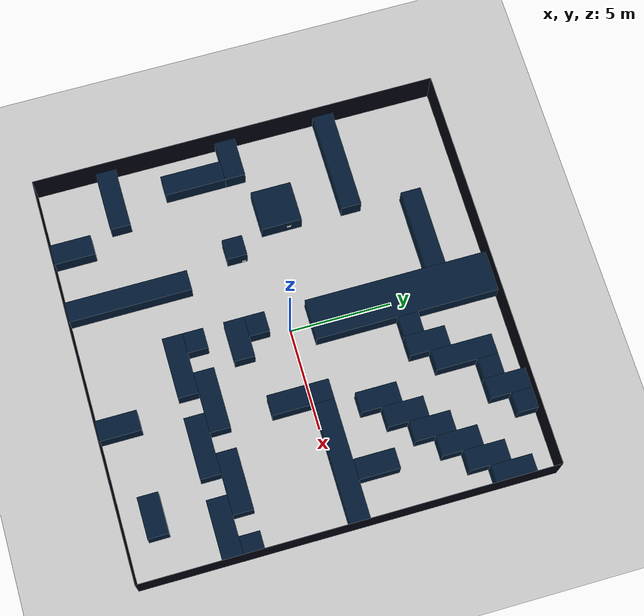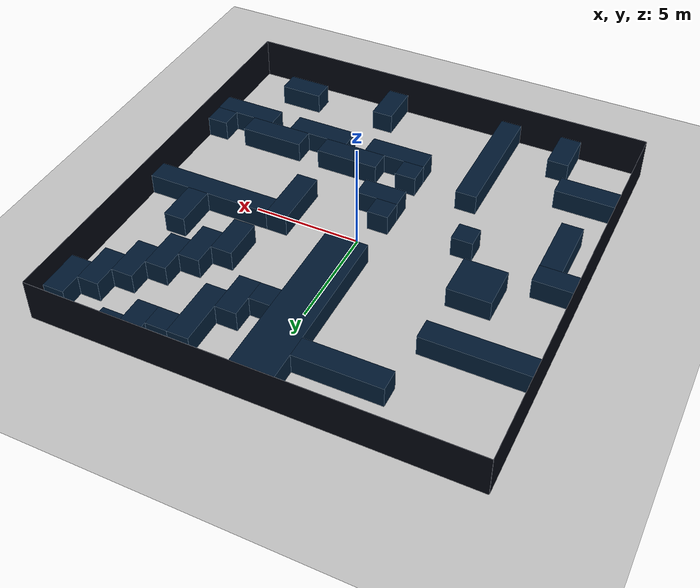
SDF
<sdf version='1.10'>
  <world name='maze'>
    <physics name='1ms' type='ignored'>
      <max_step_size>0.0030000000000000001</max_step_size>
      <real_time_factor>1</real_time_factor>
      <real_time_update_rate>1000</real_time_update_rate>
    </physics>
    <plugin name='gz::sim::systems::Physics' filename='gz-sim-physics-system'/>
    <plugin name='gz::sim::systems::UserCommands' filename='gz-sim-user-commands-system'/>
    <plugin name='gz::sim::systems::SceneBroadcaster' filename='gz-sim-scene-broadcaster-system'/>
    <plugin name='gz::sim::systems::Contact' filename='gz-sim-contact-system'/>
    <gravity>0 0 -9.8000000000000007</gravity>
    <magnetic_field>6.0000000000000002e-06 2.3e-05 -4.1999999999999998e-05</magnetic_field>
    <atmosphere type='adiabatic'/>
    <scene>
      <ambient>0.400000006 0.400000006 0.400000006 1</ambient>
      <background>0.699999988 0.699999988 0.699999988 1</background>
      <shadows>true</shadows>
    </scene>
    <model name='ground_plane'>
      <static>true</static>
      <link name='link'>
        <collision name='collision'>
          <geometry>
            <plane>
              <normal>0 0 1</normal>
              <size>100 100</size>
            </plane>
          </geometry>
          <surface>
            <friction>
              <ode/>
            </friction>
            <bounce/>
            <contact/>
          </surface>
        </collision>
        <visual name='visual'>
          <geometry>
            <plane>
              <normal>0 0 1</normal>
              <size>100 100</size>
            </plane>
          </geometry>
          <material>
            <ambient>0.800000012 0.800000012 0.800000012 1</ambient>
            <diffuse>0.800000012 0.800000012 0.800000012 1</diffuse>
            <specular>0.800000012 0.800000012 0.800000012 1</specular>
          </material>
          <plugin name='__default__' filename='__default__'/>
        </visual>
        <pose>0 0 0 0 0 0</pose>
        <inertial>
          <pose>0 0 0 0 0 0</pose>
          <mass>1</mass>
          <inertia>
            <ixx>1</ixx>
            <ixy>0</ixy>
            <ixz>0</ixz>
            <iyy>1</iyy>
            <iyz>0</iyz>
            <izz>1</izz>
          </inertia>
        </inertial>
        <enable_wind>false</enable_wind>
      </link>
      <plugin name='__default__' filename='__default__'/>
      <pose>0 0 0 0 0 0</pose>
      <self_collide>false</self_collide>
    </model>
    <model name='border'>
      <pose>0 0 1 0 0 0</pose>
      <static>true</static>
      <link name='wall1'>
        <pose>-10.005000000000001 0 0 0 0 0</pose>
        <collision name='wall1_collision'>
          <geometry>
            <box>
              <size>0.01 20 2</size>
            </box>
          </geometry>
          <surface>
            <friction>
              <ode/>
            </friction>
            <bounce/>
            <contact/>
          </surface>
        </collision>
        <visual name='wall1_visual'>
          <geometry>
            <box>
              <size>0.01 20 2</size>
            </box>
          </geometry>
          <material>
            <ambient>0.100000001 0.100000001 0.100000001 1</ambient>
            <diffuse>0 0.00999999978 0.0500000007 1</diffuse>
            <specular>0 0.00999999978 0.0500000007 1</specular>
          </material>
        </visual>
        <inertial>
          <pose>0 0 0 0 0 0</pose>
          <mass>1</mass>
          <inertia>
            <ixx>1</ixx>
            <ixy>0</ixy>
            <ixz>0</ixz>
            <iyy>1</iyy>
            <iyz>0</iyz>
            <izz>1</izz>
          </inertia>
        </inertial>
        <enable_wind>false</enable_wind>
        <static>true</static>
      </link>
      <link name='wall2'>
        <pose>10.005000000000001 0 0 0 0 0</pose>
        <collision name='wall2_collision'>
          <geometry>
            <box>
              <size>0.01 20 2</size>
            </box>
          </geometry>
          <surface>
            <friction>
              <ode/>
            </friction>
            <bounce/>
            <contact/>
          </surface>
        </collision>
        <visual name='wall2_visual'>
          <geometry>
            <box>
              <size>0.01 20 2</size>
            </box>
          </geometry>
          <material>
            <ambient>0.100000001 0.100000001 0.100000001 1</ambient>
            <diffuse>0 0.00999999978 0.0500000007 1</diffuse>
            <specular>0 0.00999999978 0.0500000007 1</specular>
          </material>
        </visual>
        <inertial>
          <pose>0 0 0 0 0 0</pose>
          <mass>1</mass>
          <inertia>
            <ixx>1</ixx>
            <ixy>0</ixy>
            <ixz>0</ixz>
            <iyy>1</iyy>
            <iyz>0</iyz>
            <izz>1</izz>
          </inertia>
        </inertial>
        <enable_wind>false</enable_wind>
        <static>true</static>
      </link>
      <link name='wall3'>
        <pose>0 10.005000000000001 0 0 0 0</pose>
        <collision name='wall3_collision'>
          <geometry>
            <box>
              <size>20 0.01 2</size>
            </box>
          </geometry>
          <surface>
            <friction>
              <ode/>
            </friction>
            <bounce/>
            <contact/>
          </surface>
        </collision>
        <visual name='wall3_visual'>
          <geometry>
            <box>
              <size>20 0.01 2</size>
            </box>
          </geometry>
          <material>
            <ambient>0.100000001 0.100000001 0.100000001 1</ambient>
            <diffuse>0 0.00999999978 0.0500000007 1</diffuse>
            <specular>0 0.00999999978 0.0500000007 1</specular>
          </material>
        </visual>
        <inertial>
          <pose>0 0 0 0 0 0</pose>
          <mass>1</mass>
          <inertia>
            <ixx>1</ixx>
            <ixy>0</ixy>
            <ixz>0</ixz>
            <iyy>1</iyy>
            <iyz>0</iyz>
            <izz>1</izz>
          </inertia>
        </inertial>
        <enable_wind>false</enable_wind>
        <static>true</static>
      </link>
      <link name='wall4'>
        <pose>0 -10.005000000000001 0 0 0 0</pose>
        <collision name='wall4_collision'>
          <geometry>
            <box>
              <size>20 0.01 2</size>
            </box>
          </geometry>
          <surface>
            <friction>
              <ode/>
            </friction>
            <bounce/>
            <contact/>
          </surface>
          <material>
            <ambient>0.1 0.1 0.1 1</ambient>
            <diffuse>0 0.01 0.05 1</diffuse>
            <specular>0 0.01 0.05 1</specular>
          </material>
        </collision>
        <visual name='wall4_visual'>
          <geometry>
            <box>
              <size>20 0.01 2</size>
            </box>
          </geometry>
          <material>
            <ambient>0.100000001 0.100000001 0.100000001 1</ambient>
            <diffuse>0 0.00999999978 0.0500000007 1</diffuse>
            <specular>0 0.00999999978 0.0500000007 1</specular>
          </material>
        </visual>
        <inertial>
          <pose>0 0 0 0 0 0</pose>
          <mass>1</mass>
          <inertia>
            <ixx>1</ixx>
            <ixy>0</ixy>
            <ixz>0</ixz>
            <iyy>1</iyy>
            <iyz>0</iyz>
            <izz>1</izz>
          </inertia>
        </inertial>
        <enable_wind>false</enable_wind>
        <static>true</static>
      </link>
      <self_collide>false</self_collide>
    </model>
    <model name='obstacles'>
      <pose>0 0 0.5 0 0 0</pose>
      <static>true</static>
      <link name='wall1'>
        <pose>-6.5 -9 0 0 0 0</pose>
        <collision name='wall1_collision'>
          <geometry>
            <box>
              <size>1 2 1</size>
            </box>
          </geometry>
          <surface>
            <friction>
              <ode/>
            </friction>
            <bounce/>
            <contact/>
          </surface>
        </collision>
        <visual name='wall1_visual'>
          <geometry>
            <box>
              <size>1 2 1</size>
            </box>
          </geometry>
          <material>
            <ambient>0.100000001 0.100000001 0.100000001 1</ambient>
            <diffuse>0 0.100000001 0.200000003 1</diffuse>
            <specular>0 0.00999999978 0.0500000007 1</specular>
          </material>
        </visual>
        <inertial>
          <pose>0 0 0 0 0 0</pose>
          <mass>1</mass>
          <inertia>
            <ixx>1</ixx>
            <ixy>0</ixy>
            <ixz>0</ixz>
            <iyy>1</iyy>
            <iyz>0</iyz>
            <izz>1</izz>
          </inertia>
        </inertial>
        <enable_wind>false</enable_wind>
        <static>true</static>
      </link>
      <link name='wall2'>
        <pose>-8.5 -6.5 0 0 0 0</pose>
        <collision name='wall2_collision'>
          <geometry>
            <box>
              <size>3 1 1</size>
            </box>
          </geometry>
          <surface>
            <friction>
              <ode/>
            </friction>
            <bounce/>
            <contact/>
          </surface>
        </collision>
        <visual name='wall2_visual'>
          <geometry>
            <box>
              <size>3 1 1</size>
            </box>
          </geometry>
          <material>
            <ambient>0.100000001 0.100000001 0.100000001 1</ambient>
            <diffuse>0 0.100000001 0.200000003 1</diffuse>
            <specular>0 0.00999999978 0.0500000007 1</specular>
          </material>
        </visual>
        <inertial>
          <pose>0 0 0 0 0 0</pose>
          <mass>1</mass>
          <inertia>
            <ixx>1</ixx>
            <ixy>0</ixy>
            <ixz>0</ixz>
            <iyy>1</iyy>
            <iyz>0</iyz>
            <izz>1</izz>
          </inertia>
        </inertial>
        <enable_wind>false</enable_wind>
        <static>true</static>
      </link>
      <link name='wall3'>
        <pose>-3.5 -7 0 0 0 0</pose>
        <collision name='wall3_collision'>
          <geometry>
            <box>
              <size>1 6 1</size>
            </box>
          </geometry>
          <surface>
            <friction>
              <ode/>
            </friction>
            <bounce/>
            <contact/>
          </surface>
        </collision>
        <visual name='wall3_visual'>
          <geometry>
            <box>
              <size>1 6 1</size>
            </box>
          </geometry>
          <material>
            <ambient>0.100000001 0.100000001 0.100000001 1</ambient>
            <diffuse>0 0.100000001 0.200000003 1</diffuse>
            <specular>0 0.00999999978 0.0500000007 1</specular>
          </material>
        </visual>
        <inertial>
          <pose>0 0 0 0 0 0</pose>
          <mass>1</mass>
          <inertia>
            <ixx>1</ixx>
            <ixy>0</ixy>
            <ixz>0</ixz>
            <iyy>1</iyy>
            <iyz>0</iyz>
            <izz>1</izz>
          </inertia>
        </inertial>
        <enable_wind>false</enable_wind>
        <static>true</static>
      </link>
      <link name='wall4'>
        <pose>2.5 -9 0 0 0 0</pose>
        <collision name='wall4_collision'>
          <geometry>
            <box>
              <size>1 2 1</size>
            </box>
          </geometry>
          <surface>
            <friction>
              <ode/>
            </friction>
            <bounce/>
            <contact/>
          </surface>
        </collision>
        <visual name='wall4_visual'>
          <geometry>
            <box>
              <size>1 2 1</size>
            </box>
          </geometry>
          <material>
            <ambient>0.100000001 0.100000001 0.100000001 1</ambient>
            <diffuse>0 0.100000001 0.200000003 1</diffuse>
            <specular>0 0.00999999978 0.0500000007 1</specular>
          </material>
        </visual>
        <inertial>
          <pose>0 0 0 0 0 0</pose>
          <mass>1</mass>
          <inertia>
            <ixx>1</ixx>
            <ixy>0</ixy>
            <ixz>0</ixz>
            <iyy>1</iyy>
            <iyz>0</iyz>
            <izz>1</izz>
          </inertia>
        </inertial>
        <enable_wind>false</enable_wind>
        <static>true</static>
      </link>
      <link name='wall5'>
        <pose>7 -8.5 0 0 0 0</pose>
        <collision name='wall5_collision'>
          <geometry>
            <box>
              <size>2 1 1</size>
            </box>
          </geometry>
          <surface>
            <friction>
              <ode/>
            </friction>
            <bounce/>
            <contact/>
          </surface>
        </collision>
        <visual name='wall5_visual'>
          <geometry>
            <box>
              <size>2 1 1</size>
            </box>
          </geometry>
          <material>
            <ambient>0.100000001 0.100000001 0.100000001 1</ambient>
            <diffuse>0 0.100000001 0.200000003 1</diffuse>
            <specular>0 0.00999999978 0.0500000007 1</specular>
          </material>
        </visual>
        <inertial>
          <pose>0 0 0 0 0 0</pose>
          <mass>1</mass>
          <inertia>
            <ixx>1</ixx>
            <ixy>0</ixy>
            <ixz>0</ixz>
            <iyy>1</iyy>
            <iyz>0</iyz>
            <izz>1</izz>
          </inertia>
        </inertial>
        <enable_wind>false</enable_wind>
        <static>true</static>
      </link>
      <link name='wall6'>
        <pose>-9 -0.5 0 0 0 0</pose>
        <collision name='wall6_collision'>
          <geometry>
            <box>
              <size>2 1 1</size>
            </box>
          </geometry>
          <surface>
            <friction>
              <ode/>
            </friction>
            <bounce/>
            <contact/>
          </surface>
        </collision>
        <visual name='wall6_visual'>
          <geometry>
            <box>
              <size>2 1 1</size>
            </box>
          </geometry>
          <material>
            <ambient>0.100000001 0.100000001 0.100000001 1</ambient>
            <diffuse>0 0.100000001 0.200000003 1</diffuse>
            <specular>0 0.00999999978 0.0500000007 1</specular>
          </material>
        </visual>
        <inertial>
          <pose>0 0 0 0 0 0</pose>
          <mass>1</mass>
          <inertia>
            <ixx>1</ixx>
            <ixy>0</ixy>
            <ixz>0</ixz>
            <iyy>1</iyy>
            <iyz>0</iyz>
            <izz>1</izz>
          </inertia>
        </inertial>
        <enable_wind>false</enable_wind>
        <static>true</static>
      </link>
      <link name='wall7'>
        <pose>-8.5 -2.5 0 0 0 0</pose>
        <collision name='wall7_collision'>
          <geometry>
            <box>
              <size>1 3 1</size>
            </box>
          </geometry>
          <surface>
            <friction>
              <ode/>
            </friction>
            <bounce/>
            <contact/>
          </surface>
        </collision>
        <visual name='wall7_visual'>
          <geometry>
            <box>
              <size>1 3 1</size>
            </box>
          </geometry>
          <material>
            <ambient>0.100000001 0.100000001 0.100000001 1</ambient>
            <diffuse>0 0.100000001 0.200000003 1</diffuse>
            <specular>0 0.00999999978 0.0500000007 1</specular>
          </material>
        </visual>
        <inertial>
          <pose>0 0 0 0 0 0</pose>
          <mass>1</mass>
          <inertia>
            <ixx>1</ixx>
            <ixy>0</ixy>
            <ixz>0</ixz>
            <iyy>1</iyy>
            <iyz>0</iyz>
            <izz>1</izz>
          </inertia>
        </inertial>
        <enable_wind>false</enable_wind>
        <static>true</static>
      </link>
      <link name='wall8'>
        <pose>-4.5 -1.5 0 0 0 0</pose>
        <collision name='wall8_collision'>
          <geometry>
            <box>
              <size>1 1 1</size>
            </box>
          </geometry>
          <surface>
            <friction>
              <ode/>
            </friction>
            <bounce/>
            <contact/>
          </surface>
        </collision>
        <visual name='wall8_visual'>
          <geometry>
            <box>
              <size>1 1 1</size>
            </box>
          </geometry>
          <material>
            <ambient>0.100000001 0.100000001 0.100000001 1</ambient>
            <diffuse>0 0.100000001 0.200000003 1</diffuse>
            <specular>0 0.00999999978 0.0500000007 1</specular>
          </material>
        </visual>
        <inertial>
          <pose>0 0 0 0 0 0</pose>
          <mass>1</mass>
          <inertia>
            <ixx>1</ixx>
            <ixy>0</ixy>
            <ixz>0</ixz>
            <iyy>1</iyy>
            <iyz>0</iyz>
            <izz>1</izz>
          </inertia>
        </inertial>
        <enable_wind>false</enable_wind>
        <static>true</static>
      </link>
      <link name='wall9'>
        <pose>-6 1 0 0 0 0</pose>
        <collision name='wall9_collision'>
          <geometry>
            <box>
              <size>2 2 1</size>
            </box>
          </geometry>
          <surface>
            <friction>
              <ode/>
            </friction>
            <bounce/>
            <contact/>
          </surface>
        </collision>
        <visual name='wall9_visual'>
          <geometry>
            <box>
              <size>2 2 1</size>
            </box>
          </geometry>
          <material>
            <ambient>0.100000001 0.100000001 0.100000001 1</ambient>
            <diffuse>0 0.100000001 0.200000003 1</diffuse>
            <specular>0 0.00999999978 0.0500000007 1</specular>
          </material>
        </visual>
        <inertial>
          <pose>0 0 0 0 0 0</pose>
          <mass>1</mass>
          <inertia>
            <ixx>1</ixx>
            <ixy>0</ixy>
            <ixz>0</ixz>
            <iyy>1</iyy>
            <iyz>0</iyz>
            <izz>1</izz>
          </inertia>
        </inertial>
        <enable_wind>false</enable_wind>
        <static>true</static>
      </link>
      <link name='wall10'>
        <pose>-7.5 4.5 0 0 0 0</pose>
        <collision name='wall10_collision'>
          <geometry>
            <box>
              <size>5 1 1</size>
            </box>
          </geometry>
          <surface>
            <friction>
              <ode/>
            </friction>
            <bounce/>
            <contact/>
          </surface>
        </collision>
        <visual name='wall10_visual'>
          <geometry>
            <box>
              <size>5 1 1</size>
            </box>
          </geometry>
          <material>
            <ambient>0.100000001 0.100000001 0.100000001 1</ambient>
            <diffuse>0 0.100000001 0.200000003 1</diffuse>
            <specular>0 0.00999999978 0.0500000007 1</specular>
          </material>
        </visual>
        <inertial>
          <pose>0 0 0 0 0 0</pose>
          <mass>1</mass>
          <inertia>
            <ixx>1</ixx>
            <ixy>0</ixy>
            <ixz>0</ixz>
            <iyy>1</iyy>
            <iyz>0</iyz>
            <izz>1</izz>
          </inertia>
        </inertial>
        <enable_wind>false</enable_wind>
        <static>true</static>
      </link>
      <link name='wall11'>
        <pose>-3 7.5 0 0 0 0</pose>
        <collision name='wall11_collision'>
          <geometry>
            <box>
              <size>4 1 1</size>
            </box>
          </geometry>
          <surface>
            <friction>
              <ode/>
            </friction>
            <bounce/>
            <contact/>
          </surface>
        </collision>
        <visual name='wall11_visual'>
          <geometry>
            <box>
              <size>4 1 1</size>
            </box>
          </geometry>
          <material>
            <ambient>0.100000001 0.100000001 0.100000001 1</ambient>
            <diffuse>0 0.100000001 0.200000003 1</diffuse>
            <specular>0 0.00999999978 0.0500000007 1</specular>
          </material>
        </visual>
        <inertial>
          <pose>0 0 0 0 0 0</pose>
          <mass>1</mass>
          <inertia>
            <ixx>1</ixx>
            <ixy>0</ixy>
            <ixz>0</ixz>
            <iyy>1</iyy>
            <iyz>0</iyz>
            <izz>1</izz>
          </inertia>
        </inertial>
        <enable_wind>false</enable_wind>
        <static>true</static>
      </link>
      <link name='wall12'>
        <pose>0 5.5 0 0 0 0</pose>
        <collision name='wall12_collision'>
          <geometry>
            <box>
              <size>2 9 1</size>
            </box>
          </geometry>
          <surface>
            <friction>
              <ode/>
            </friction>
            <bounce/>
            <contact/>
          </surface>
        </collision>
        <visual name='wall12_visual'>
          <geometry>
            <box>
              <size>2 9 1</size>
            </box>
          </geometry>
          <material>
            <ambient>0.100000001 0.100000001 0.100000001 1</ambient>
            <diffuse>0 0.100000001 0.200000003 1</diffuse>
            <specular>0 0.00999999978 0.0500000007 1</specular>
          </material>
        </visual>
        <inertial>
          <pose>0 0 0 0 0 0</pose>
          <mass>1</mass>
          <inertia>
            <ixx>1</ixx>
            <ixy>0</ixy>
            <ixz>0</ixz>
            <iyy>1</iyy>
            <iyz>0</iyz>
            <izz>1</izz>
          </inertia>
        </inertial>
        <enable_wind>false</enable_wind>
        <static>true</static>
      </link>
      <link name='wall13'>
        <pose>0 -2.5 0 0 0 0</pose>
        <collision name='wall13_collision'>
          <geometry>
            <box>
              <size>2 1 1</size>
            </box>
          </geometry>
          <surface>
            <friction>
              <ode/>
            </friction>
            <bounce/>
            <contact/>
          </surface>
        </collision>
        <visual name='wall13_visual'>
          <geometry>
            <box>
              <size>2 1 1</size>
            </box>
          </geometry>
          <material>
            <ambient>0.100000001 0.100000001 0.100000001 1</ambient>
            <diffuse>0 0.100000001 0.200000003 1</diffuse>
            <specular>0 0.00999999978 0.0500000007 1</specular>
          </material>
        </visual>
        <inertial>
          <pose>0 0 0 0 0 0</pose>
          <mass>1</mass>
          <inertia>
            <ixx>1</ixx>
            <ixy>0</ixy>
            <ixz>0</ixz>
            <iyy>1</iyy>
            <iyz>0</iyz>
            <izz>1</izz>
          </inertia>
        </inertial>
        <enable_wind>false</enable_wind>
        <static>true</static>
      </link>
      <link name='wall14'>
        <pose>-0.5 -1.5 0 0 0 0</pose>
        <collision name='wall14_collision'>
          <geometry>
            <box>
              <size>1 1 1</size>
            </box>
          </geometry>
          <surface>
            <friction>
              <ode/>
            </friction>
            <bounce/>
            <contact/>
          </surface>
        </collision>
        <visual name='wall14_visual'>
          <geometry>
            <box>
              <size>1 1 1</size>
            </box>
          </geometry>
          <material>
            <ambient>0.100000001 0.100000001 0.100000001 1</ambient>
            <diffuse>0 0.100000001 0.200000003 1</diffuse>
            <specular>0 0.00999999978 0.0500000007 1</specular>
          </material>
        </visual>
        <inertial>
          <pose>0 0 0 0 0 0</pose>
          <mass>1</mass>
          <inertia>
            <ixx>1</ixx>
            <ixy>0</ixy>
            <ixz>0</ixz>
            <iyy>1</iyy>
            <iyz>0</iyz>
            <izz>1</izz>
          </inertia>
        </inertial>
        <enable_wind>false</enable_wind>
        <static>true</static>
      </link>
      <link name='wall15'>
        <pose>-0.5 -4.5 0 0 0 0</pose>
        <collision name='wall15_collision'>
          <geometry>
            <box>
              <size>1 1 1</size>
            </box>
          </geometry>
          <surface>
            <friction>
              <ode/>
            </friction>
            <bounce/>
            <contact/>
          </surface>
        </collision>
        <visual name='wall15_visual'>
          <geometry>
            <box>
              <size>1 1 1</size>
            </box>
          </geometry>
          <material>
            <ambient>0.100000001 0.100000001 0.100000001 1</ambient>
            <diffuse>0 0.100000001 0.200000003 1</diffuse>
            <specular>0 0.00999999978 0.0500000007 1</specular>
          </material>
        </visual>
        <inertial>
          <pose>0 0 0 0 0 0</pose>
          <mass>1</mass>
          <inertia>
            <ixx>1</ixx>
            <ixy>0</ixy>
            <ixz>0</ixz>
            <iyy>1</iyy>
            <iyz>0</iyz>
            <izz>1</izz>
          </inertia>
        </inertial>
        <enable_wind>false</enable_wind>
        <static>true</static>
      </link>
      <link name='wall16'>
        <pose>0.5 -5.5 0 0 0 0</pose>
        <collision name='wall16_collision'>
          <geometry>
            <box>
              <size>3 1 1</size>
            </box>
          </geometry>
          <surface>
            <friction>
              <ode/>
            </friction>
            <bounce/>
            <contact/>
          </surface>
        </collision>
        <visual name='wall16_visual'>
          <geometry>
            <box>
              <size>3 1 1</size>
            </box>
          </geometry>
          <material>
            <ambient>0.100000001 0.100000001 0.100000001 1</ambient>
            <diffuse>0 0.100000001 0.200000003 1</diffuse>
            <specular>0 0.00999999978 0.0500000007 1</specular>
          </material>
        </visual>
        <inertial>
          <pose>0 0 0 0 0 0</pose>
          <mass>1</mass>
          <inertia>
            <ixx>1</ixx>
            <ixy>0</ixy>
            <ixz>0</ixz>
            <iyy>1</iyy>
            <iyz>0</iyz>
            <izz>1</izz>
          </inertia>
        </inertial>
        <enable_wind>false</enable_wind>
        <static>true</static>
      </link>
      <link name='wall17'>
        <pose>2.5 -4.5 0 0 0 0</pose>
        <collision name='wall17_collision'>
          <geometry>
            <box>
              <size>3 1 1</size>
            </box>
          </geometry>
          <surface>
            <friction>
              <ode/>
            </friction>
            <bounce/>
            <contact/>
          </surface>
        </collision>
        <visual name='wall17_visual'>
          <geometry>
            <box>
              <size>3 1 1</size>
            </box>
          </geometry>
          <material>
            <ambient>0.100000001 0.100000001 0.100000001 1</ambient>
            <diffuse>0 0.100000001 0.200000003 1</diffuse>
            <specular>0 0.00999999978 0.0500000007 1</specular>
          </material>
        </visual>
        <inertial>
          <pose>0 0 0 0 0 0</pose>
          <mass>1</mass>
          <inertia>
            <ixx>1</ixx>
            <ixy>0</ixy>
            <ixz>0</ixz>
            <iyy>1</iyy>
            <iyz>0</iyz>
            <izz>1</izz>
          </inertia>
        </inertial>
        <enable_wind>false</enable_wind>
        <static>true</static>
      </link>
      <link name='wall18'>
        <pose>4.5 -5.5 0 0 0 0</pose>
        <collision name='wall18_collision'>
          <geometry>
            <box>
              <size>3 1 1</size>
            </box>
          </geometry>
          <surface>
            <friction>
              <ode/>
            </friction>
            <bounce/>
            <contact/>
          </surface>
        </collision>
        <visual name='wall18_visual'>
          <geometry>
            <box>
              <size>3 1 1</size>
            </box>
          </geometry>
          <material>
            <ambient>0.100000001 0.100000001 0.100000001 1</ambient>
            <diffuse>0 0.100000001 0.200000003 1</diffuse>
            <specular>0 0.00999999978 0.0500000007 1</specular>
          </material>
        </visual>
        <inertial>
          <pose>0 0 0 0 0 0</pose>
          <mass>1</mass>
          <inertia>
            <ixx>1</ixx>
            <ixy>0</ixy>
            <ixz>0</ixz>
            <iyy>1</iyy>
            <iyz>0</iyz>
            <izz>1</izz>
          </inertia>
        </inertial>
        <enable_wind>false</enable_wind>
        <static>true</static>
      </link>
      <link name='wall19'>
        <pose>6.5 -4.5 0 0 0 0</pose>
        <collision name='wall19_collision'>
          <geometry>
            <box>
              <size>3 1 1</size>
            </box>
          </geometry>
          <surface>
            <friction>
              <ode/>
            </friction>
            <bounce/>
            <contact/>
          </surface>
        </collision>
        <visual name='wall19_visual'>
          <geometry>
            <box>
              <size>3 1 1</size>
            </box>
          </geometry>
          <material>
            <ambient>0.100000001 0.100000001 0.100000001 1</ambient>
            <diffuse>0 0.100000001 0.200000003 1</diffuse>
            <specular>0 0.00999999978 0.0500000007 1</specular>
          </material>
        </visual>
        <inertial>
          <pose>0 0 0 0 0 0</pose>
          <mass>1</mass>
          <inertia>
            <ixx>1</ixx>
            <ixy>0</ixy>
            <ixz>0</ixz>
            <iyy>1</iyy>
            <iyz>0</iyz>
            <izz>1</izz>
          </inertia>
        </inertial>
        <enable_wind>false</enable_wind>
        <static>true</static>
      </link>
      <link name='wall20'>
        <pose>8.5 -5.5 0 0 0 0</pose>
        <collision name='wall20_collision'>
          <geometry>
            <box>
              <size>3 1 1</size>
            </box>
          </geometry>
          <surface>
            <friction>
              <ode/>
            </friction>
            <bounce/>
            <contact/>
          </surface>
        </collision>
        <visual name='wall20_visual'>
          <geometry>
            <box>
              <size>3 1 1</size>
            </box>
          </geometry>
          <material>
            <ambient>0.100000001 0.100000001 0.100000001 1</ambient>
            <diffuse>0 0.100000001 0.200000003 1</diffuse>
            <specular>0 0.00999999978 0.0500000007 1</specular>
          </material>
        </visual>
        <inertial>
          <pose>0 0 0 0 0 0</pose>
          <mass>1</mass>
          <inertia>
            <ixx>1</ixx>
            <ixy>0</ixy>
            <ixz>0</ixz>
            <iyy>1</iyy>
            <iyz>0</iyz>
            <izz>1</izz>
          </inertia>
        </inertial>
        <enable_wind>false</enable_wind>
        <static>true</static>
      </link>
      <link name='wall21'>
        <pose>9.5 -4.5 0 0 0 0</pose>
        <collision name='wall21_collision'>
          <geometry>
            <box>
              <size>1 1 1</size>
            </box>
          </geometry>
          <surface>
            <friction>
              <ode/>
            </friction>
            <bounce/>
            <contact/>
          </surface>
        </collision>
        <visual name='wall21_visual'>
          <geometry>
            <box>
              <size>1 1 1</size>
            </box>
          </geometry>
          <material>
            <ambient>0.100000001 0.100000001 0.100000001 1</ambient>
            <diffuse>0 0.100000001 0.200000003 1</diffuse>
            <specular>0 0.00999999978 0.0500000007 1</specular>
          </material>
        </visual>
        <inertial>
          <pose>0 0 0 0 0 0</pose>
          <mass>1</mass>
          <inertia>
            <ixx>1</ixx>
            <ixy>0</ixy>
            <ixz>0</ixz>
            <iyy>1</iyy>
            <iyz>0</iyz>
            <izz>1</izz>
          </inertia>
        </inertial>
        <enable_wind>false</enable_wind>
        <static>true</static>
      </link>
      <link name='wall22'>
        <pose>3.5 -0.5 0 0 0 0</pose>
        <collision name='wall22_collision'>
          <geometry>
            <box>
              <size>1 3 1</size>
            </box>
          </geometry>
          <surface>
            <friction>
              <ode/>
            </friction>
            <bounce/>
            <contact/>
          </surface>
        </collision>
        <visual name='wall22_visual'>
          <geometry>
            <box>
              <size>1 3 1</size>
            </box>
          </geometry>
          <material>
            <ambient>0.100000001 0.100000001 0.100000001 1</ambient>
            <diffuse>0 0.100000001 0.200000003 1</diffuse>
            <specular>0 0.00999999978 0.0500000007 1</specular>
          </material>
        </visual>
        <inertial>
          <pose>0 0 0 0 0 0</pose>
          <mass>1</mass>
          <inertia>
            <ixx>1</ixx>
            <ixy>0</ixy>
            <ixz>0</ixz>
            <iyy>1</iyy>
            <iyz>0</iyz>
            <izz>1</izz>
          </inertia>
        </inertial>
        <enable_wind>false</enable_wind>
        <static>true</static>
      </link>
      <link name='wall23'>
        <pose>7 0.5 0 0 0 0</pose>
        <collision name='wall23_collision'>
          <geometry>
            <box>
              <size>6 1 1</size>
            </box>
          </geometry>
          <surface>
            <friction>
              <ode/>
            </friction>
            <bounce/>
            <contact/>
          </surface>
        </collision>
        <visual name='wall23_visual'>
          <geometry>
            <box>
              <size>6 1 1</size>
            </box>
          </geometry>
          <material>
            <ambient>0.100000001 0.100000001 0.100000001 1</ambient>
            <diffuse>0 0.100000001 0.200000003 1</diffuse>
            <specular>0 0.00999999978 0.0500000007 1</specular>
          </material>
        </visual>
        <inertial>
          <pose>0 0 0 0 0 0</pose>
          <mass>1</mass>
          <inertia>
            <ixx>1</ixx>
            <ixy>0</ixy>
            <ixz>0</ixz>
            <iyy>1</iyy>
            <iyz>0</iyz>
            <izz>1</izz>
          </inertia>
        </inertial>
        <enable_wind>false</enable_wind>
        <static>true</static>
      </link>
      <link name='wall24'>
        <pose>7.5 2 0 0 0 0</pose>
        <collision name='wall24_collision'>
          <geometry>
            <box>
              <size>1 2 1</size>
            </box>
          </geometry>
          <surface>
            <friction>
              <ode/>
            </friction>
            <bounce/>
            <contact/>
          </surface>
        </collision>
        <visual name='wall24_visual'>
          <geometry>
            <box>
              <size>1 2 1</size>
            </box>
          </geometry>
          <material>
            <ambient>0.100000001 0.100000001 0.100000001 1</ambient>
            <diffuse>0 0.100000001 0.200000003 1</diffuse>
            <specular>0 0.00999999978 0.0500000007 1</specular>
          </material>
        </visual>
        <inertial>
          <pose>0 0 0 0 0 0</pose>
          <mass>1</mass>
          <inertia>
            <ixx>1</ixx>
            <ixy>0</ixy>
            <ixz>0</ixz>
            <iyy>1</iyy>
            <iyz>0</iyz>
            <izz>1</izz>
          </inertia>
        </inertial>
        <enable_wind>false</enable_wind>
        <static>true</static>
      </link>
      <link name='wall25'>
        <pose>1.5 5.5 0 0 0 0</pose>
        <collision name='wall25_collision'>
          <geometry>
            <box>
              <size>1 1 1</size>
            </box>
          </geometry>
          <surface>
            <friction>
              <ode/>
            </friction>
            <bounce/>
            <contact/>
          </surface>
        </collision>
        <visual name='wall25_visual'>
          <geometry>
            <box>
              <size>1 1 1</size>
            </box>
          </geometry>
          <material>
            <ambient>0.100000001 0.100000001 0.100000001 1</ambient>
            <diffuse>0 0.100000001 0.200000003 1</diffuse>
            <specular>0 0.00999999978 0.0500000007 1</specular>
          </material>
        </visual>
        <inertial>
          <pose>0 0 0 0 0 0</pose>
          <mass>1</mass>
          <inertia>
            <ixx>1</ixx>
            <ixy>0</ixy>
            <ixz>0</ixz>
            <iyy>1</iyy>
            <iyz>0</iyz>
            <izz>1</izz>
          </inertia>
        </inertial>
        <enable_wind>false</enable_wind>
        <static>true</static>
      </link>
      <link name='wall26'>
        <pose>2.5 6 0 0 0 0</pose>
        <collision name='wall26_collision'>
          <geometry>
            <box>
              <size>1 2 1</size>
            </box>
          </geometry>
          <surface>
            <friction>
              <ode/>
            </friction>
            <bounce/>
            <contact/>
          </surface>
        </collision>
        <visual name='wall26_visual'>
          <geometry>
            <box>
              <size>1 2 1</size>
            </box>
          </geometry>
          <material>
            <ambient>0.100000001 0.100000001 0.100000001 1</ambient>
            <diffuse>0 0.100000001 0.200000003 1</diffuse>
            <specular>0 0.00999999978 0.0500000007 1</specular>
          </material>
        </visual>
        <inertial>
          <pose>0 0 0 0 0 0</pose>
          <mass>1</mass>
          <inertia>
            <ixx>1</ixx>
            <ixy>0</ixy>
            <ixz>0</ixz>
            <iyy>1</iyy>
            <iyz>0</iyz>
            <izz>1</izz>
          </inertia>
        </inertial>
        <enable_wind>false</enable_wind>
        <static>true</static>
      </link>
      <link name='wall27'>
        <pose>3.5 7.5 0 0 0 0</pose>
        <collision name='wall27_collision'>
          <geometry>
            <box>
              <size>1 3 1</size>
            </box>
          </geometry>
          <surface>
            <friction>
              <ode/>
            </friction>
            <bounce/>
            <contact/>
          </surface>
        </collision>
        <visual name='wall27_visual'>
          <geometry>
            <box>
              <size>1 3 1</size>
            </box>
          </geometry>
          <material>
            <ambient>0.100000001 0.100000001 0.100000001 1</ambient>
            <diffuse>0 0.100000001 0.200000003 1</diffuse>
            <specular>0 0.00999999978 0.0500000007 1</specular>
          </material>
        </visual>
        <inertial>
          <pose>0 0 0 0 0 0</pose>
          <mass>1</mass>
          <inertia>
            <ixx>1</ixx>
            <ixy>0</ixy>
            <ixz>0</ixz>
            <iyy>1</iyy>
            <iyz>0</iyz>
            <izz>1</izz>
          </inertia>
        </inertial>
        <enable_wind>false</enable_wind>
        <static>true</static>
      </link>
      <link name='wall28'>
        <pose>4.5 8.5 0 0 0 0</pose>
        <collision name='wall28_collision'>
          <geometry>
            <box>
              <size>1 1 1</size>
            </box>
          </geometry>
          <surface>
            <friction>
              <ode/>
            </friction>
            <bounce/>
            <contact/>
          </surface>
        </collision>
        <visual name='wall28_visual'>
          <geometry>
            <box>
              <size>1 1 1</size>
            </box>
          </geometry>
          <material>
            <ambient>0.100000001 0.100000001 0.100000001 1</ambient>
            <diffuse>0 0.100000001 0.200000003 1</diffuse>
            <specular>0 0.00999999978 0.0500000007 1</specular>
          </material>
        </visual>
        <inertial>
          <pose>0 0 0 0 0 0</pose>
          <mass>1</mass>
          <inertia>
            <ixx>1</ixx>
            <ixy>0</ixy>
            <ixz>0</ixz>
            <iyy>1</iyy>
            <iyz>0</iyz>
            <izz>1</izz>
          </inertia>
        </inertial>
        <enable_wind>false</enable_wind>
        <static>true</static>
      </link>
      <link name='wall29'>
        <pose>5.5 9 0 0 0 0</pose>
        <collision name='wall29_collision'>
          <geometry>
            <box>
              <size>1 2 1</size>
            </box>
          </geometry>
          <surface>
            <friction>
              <ode/>
            </friction>
            <bounce/>
            <contact/>
          </surface>
        </collision>
        <visual name='wall29_visual'>
          <geometry>
            <box>
              <size>1 2 1</size>
            </box>
          </geometry>
          <material>
            <ambient>0.100000001 0.100000001 0.100000001 1</ambient>
            <diffuse>0 0.100000001 0.200000003 1</diffuse>
            <specular>0 0.00999999978 0.0500000007 1</specular>
          </material>
        </visual>
        <inertial>
          <pose>0 0 0 0 0 0</pose>
          <mass>1</mass>
          <inertia>
            <ixx>1</ixx>
            <ixy>0</ixy>
            <ixz>0</ixz>
            <iyy>1</iyy>
            <iyz>0</iyz>
            <izz>1</izz>
          </inertia>
        </inertial>
        <enable_wind>false</enable_wind>
        <static>true</static>
      </link>
      <link name='wall30'>
        <pose>6.5 9.5 0 0 0 0</pose>
        <collision name='wall30_collision'>
          <geometry>
            <box>
              <size>1 1 1</size>
            </box>
          </geometry>
          <surface>
            <friction>
              <ode/>
            </friction>
            <bounce/>
            <contact/>
          </surface>
        </collision>
        <visual name='wall30_visual'>
          <geometry>
            <box>
              <size>1 1 1</size>
            </box>
          </geometry>
          <material>
            <ambient>0.100000001 0.100000001 0.100000001 1</ambient>
            <diffuse>0 0.100000001 0.200000003 1</diffuse>
            <specular>0 0.00999999978 0.0500000007 1</specular>
          </material>
        </visual>
        <inertial>
          <pose>0 0 0 0 0 0</pose>
          <mass>1</mass>
          <inertia>
            <ixx>1</ixx>
            <ixy>0</ixy>
            <ixz>0</ixz>
            <iyy>1</iyy>
            <iyz>0</iyz>
            <izz>1</izz>
          </inertia>
        </inertial>
        <enable_wind>false</enable_wind>
        <static>true</static>
      </link>
      <link name='wall31'>
        <pose>4.5 3 0 0 0 0</pose>
        <collision name='wall31_collision'>
          <geometry>
            <box>
              <size>1 2 1</size>
            </box>
          </geometry>
          <surface>
            <friction>
              <ode/>
            </friction>
            <bounce/>
            <contact/>
          </surface>
        </collision>
        <visual name='wall31_visual'>
          <geometry>
            <box>
              <size>1 2 1</size>
            </box>
          </geometry>
          <material>
            <ambient>0.100000001 0.100000001 0.100000001 1</ambient>
            <diffuse>0 0.100000001 0.200000003 1</diffuse>
            <specular>0 0.00999999978 0.0500000007 1</specular>
          </material>
        </visual>
        <inertial>
          <pose>0 0 0 0 0 0</pose>
          <mass>1</mass>
          <inertia>
            <ixx>1</ixx>
            <ixy>0</ixy>
            <ixz>0</ixz>
            <iyy>1</iyy>
            <iyz>0</iyz>
            <izz>1</izz>
          </inertia>
        </inertial>
        <enable_wind>false</enable_wind>
        <static>true</static>
      </link>
      <link name='wall32'>
        <pose>5.5 4 0 0 0 0</pose>
        <collision name='wall32_collision'>
          <geometry>
            <box>
              <size>1 2 1</size>
            </box>
          </geometry>
          <surface>
            <friction>
              <ode/>
            </friction>
            <bounce/>
            <contact/>
          </surface>
        </collision>
        <visual name='wall32_visual'>
          <geometry>
            <box>
              <size>1 2 1</size>
            </box>
          </geometry>
          <material>
            <ambient>0.100000001 0.100000001 0.100000001 1</ambient>
            <diffuse>0 0.100000001 0.200000003 1</diffuse>
            <specular>0 0.00999999978 0.0500000007 1</specular>
          </material>
        </visual>
        <inertial>
          <pose>0 0 0 0 0 0</pose>
          <mass>1</mass>
          <inertia>
            <ixx>1</ixx>
            <ixy>0</ixy>
            <ixz>0</ixz>
            <iyy>1</iyy>
            <iyz>0</iyz>
            <izz>1</izz>
          </inertia>
        </inertial>
        <enable_wind>false</enable_wind>
        <static>true</static>
      </link>
      <link name='wall33'>
        <pose>6.5 5 0 0 0 0</pose>
        <collision name='wall33_collision'>
          <geometry>
            <box>
              <size>1 2 1</size>
            </box>
          </geometry>
          <surface>
            <friction>
              <ode/>
            </friction>
            <bounce/>
            <contact/>
          </surface>
        </collision>
        <visual name='wall33_visual'>
          <geometry>
            <box>
              <size>1 2 1</size>
            </box>
          </geometry>
          <material>
            <ambient>0.100000001 0.100000001 0.100000001 1</ambient>
            <diffuse>0 0.100000001 0.200000003 1</diffuse>
            <specular>0 0.00999999978 0.0500000007 1</specular>
          </material>
        </visual>
        <inertial>
          <pose>0 0 0 0 0 0</pose>
          <mass>1</mass>
          <inertia>
            <ixx>1</ixx>
            <ixy>0</ixy>
            <ixz>0</ixz>
            <iyy>1</iyy>
            <iyz>0</iyz>
            <izz>1</izz>
          </inertia>
        </inertial>
        <enable_wind>false</enable_wind>
        <static>true</static>
      </link>
      <link name='wall34'>
        <pose>7.5 6 0 0 0 0</pose>
        <collision name='wall34_collision'>
          <geometry>
            <box>
              <size>1 2 1</size>
            </box>
          </geometry>
          <surface>
            <friction>
              <ode/>
            </friction>
            <bounce/>
            <contact/>
          </surface>
        </collision>
        <visual name='wall34_visual'>
          <geometry>
            <box>
              <size>1 2 1</size>
            </box>
          </geometry>
          <material>
            <ambient>0.100000001 0.100000001 0.100000001 1</ambient>
            <diffuse>0 0.100000001 0.200000003 1</diffuse>
            <specular>0 0.00999999978 0.0500000007 1</specular>
          </material>
        </visual>
        <inertial>
          <pose>0 0 0 0 0 0</pose>
          <mass>1</mass>
          <inertia>
            <ixx>1</ixx>
            <ixy>0</ixy>
            <ixz>0</ixz>
            <iyy>1</iyy>
            <iyz>0</iyz>
            <izz>1</izz>
          </inertia>
        </inertial>
        <enable_wind>false</enable_wind>
        <static>true</static>
      </link>
      <link name='wall35'>
        <pose>8.5 7 0 0 0 0</pose>
        <collision name='wall35_collision'>
          <geometry>
            <box>
              <size>1 2 1</size>
            </box>
          </geometry>
          <surface>
            <friction>
              <ode/>
            </friction>
            <bounce/>
            <contact/>
          </surface>
        </collision>
        <visual name='wall35_visual'>
          <geometry>
            <box>
              <size>1 2 1</size>
            </box>
          </geometry>
          <material>
            <ambient>0.100000001 0.100000001 0.100000001 1</ambient>
            <diffuse>0 0.100000001 0.200000003 1</diffuse>
            <specular>0 0.00999999978 0.0500000007 1</specular>
          </material>
        </visual>
        <inertial>
          <pose>0 0 0 0 0 0</pose>
          <mass>1</mass>
          <inertia>
            <ixx>1</ixx>
            <ixy>0</ixy>
            <ixz>0</ixz>
            <iyy>1</iyy>
            <iyz>0</iyz>
            <izz>1</izz>
          </inertia>
        </inertial>
        <enable_wind>false</enable_wind>
        <static>true</static>
      </link>
      <link name='wall36'>
        <pose>9.5 8 0 0 0 0</pose>
        <collision name='wall36_collision'>
          <geometry>
            <box>
              <size>1 2 1</size>
            </box>
          </geometry>
          <surface>
            <friction>
              <ode/>
            </friction>
            <bounce/>
            <contact/>
          </surface>
        </collision>
        <visual name='wall36_visual'>
          <geometry>
            <box>
              <size>1 2 1</size>
            </box>
          </geometry>
          <material>
            <ambient>0.100000001 0.100000001 0.100000001 1</ambient>
            <diffuse>0 0.100000001 0.200000003 1</diffuse>
            <specular>0 0.00999999978 0.0500000007 1</specular>
          </material>
        </visual>
        <inertial>
          <pose>0 0 0 0 0 0</pose>
          <mass>1</mass>
          <inertia>
            <ixx>1</ixx>
            <ixy>0</ixy>
            <ixz>0</ixz>
            <iyy>1</iyy>
            <iyz>0</iyz>
            <izz>1</izz>
          </inertia>
        </inertial>
        <enable_wind>false</enable_wind>
        <static>true</static>
      </link>
      <self_collide>false</self_collide>
    </model>
    <model name='tag36_11_00012'>
      <static>true</static>
      <link name='link'>
        <visual name='visual'>
          <geometry>
            <box>
              <size>0.20000000000000001 0.20000000000000001 0.001</size>
            </box>
          </geometry>
          <material>
            <ambient>1 1 1 1</ambient>
            <diffuse>1 1 1 1</diffuse>
            <specular>0.5 0.5 0.5 1</specular>
            <pbr>
              <metal>
                <albedo_map>materials/textures/tag36_11_00012.png</albedo_map>
                <roughness>0.5</roughness>
                <metalness>0.0</metalness>
              </metal>
            </pbr>
          </material>
        </visual>
        <collision name='collision'>
          <geometry>
            <box>
              <size>0.20000000000000001 0.20000000000000001 0.001</size>
            </box>
          </geometry>
          <surface>
            <friction>
              <ode/>
            </friction>
            <bounce/>
            <contact/>
          </surface>
        </collision>
        <pose>0 0 0 0 0 0</pose>
        <inertial>
          <pose>0 0 0 0 0 0</pose>
          <mass>1</mass>
          <inertia>
            <ixx>1</ixx>
            <ixy>0</ixy>
            <ixz>0</ixz>
            <iyy>1</iyy>
            <iyz>0</iyz>
            <izz>1</izz>
          </inertia>
        </inertial>
        <enable_wind>false</enable_wind>
      </link>
      <pose>-4.9845418930053711 1.3673000335693359 0.52477908134460449 -2.5823559067458811e-06 1.5707900047500589 -2.5823559067458811e-06</pose>
      <self_collide>false</self_collide>
    </model>
    <model name='tag36_11_00006'>
      <static>true</static>
      <link name='link'>
        <visual name='visual'>
          <geometry>
            <box>
              <size>0.20000000000000001 0.20000000000000001 0.001</size>
            </box>
          </geometry>
          <material>
            <ambient>1 1 1 1</ambient>
            <diffuse>1 1 1 1</diffuse>
            <specular>0.5 0.5 0.5 1</specular>
            <pbr>
              <metal>
                <albedo_map>materials/textures/tag36_11_00006.png</albedo_map>
                <roughness>0.5</roughness>
                <metalness>0.0</metalness>
              </metal>
            </pbr>
          </material>
        </visual>
        <collision name='collision'>
          <geometry>
            <box>
              <size>0.20000000000000001 0.20000000000000001 0.001</size>
            </box>
          </geometry>
          <surface>
            <friction>
              <ode/>
            </friction>
            <bounce/>
            <contact/>
          </surface>
        </collision>
        <pose>0 0 0 0 0 0</pose>
        <inertial>
          <pose>0 0 0 0 0 0</pose>
          <mass>1</mass>
          <inertia>
            <ixx>1</ixx>
            <ixy>0</ixy>
            <ixz>0</ixz>
            <iyy>1</iyy>
            <iyz>0</iyz>
            <izz>1</izz>
          </inertia>
        </inertial>
        <enable_wind>false</enable_wind>
      </link>
      <pose>-3.9791190624237061 -1.176550030708313 0.17802965641021729 -2.6701821478805208e-06 1.5707900047500589 -2.6701821478805196e-06</pose>
      <self_collide>false</self_collide>
    </model>
    <light name='sun' type='directional'>
      <pose>0 0 10 0 0 0</pose>
      <cast_shadows>true</cast_shadows>
      <intensity>1</intensity>
      <direction>-0.5 0.10000000000000001 -0.90000000000000002</direction>
      <diffuse>0.800000012 0.800000012 0.800000012 1</diffuse>
      <specular>0.200000003 0.200000003 0.200000003 1</specular>
      <attenuation>
        <range>1000</range>
        <linear>0.01</linear>
        <constant>0.90000000000000002</constant>
        <quadratic>0.001</quadratic>
      </attenuation>
      <spot>
        <inner_angle>0</inner_angle>
        <outer_angle>0</outer_angle>
        <falloff>0</falloff>
      </spot>
    </light>
  </world>
</sdf>
